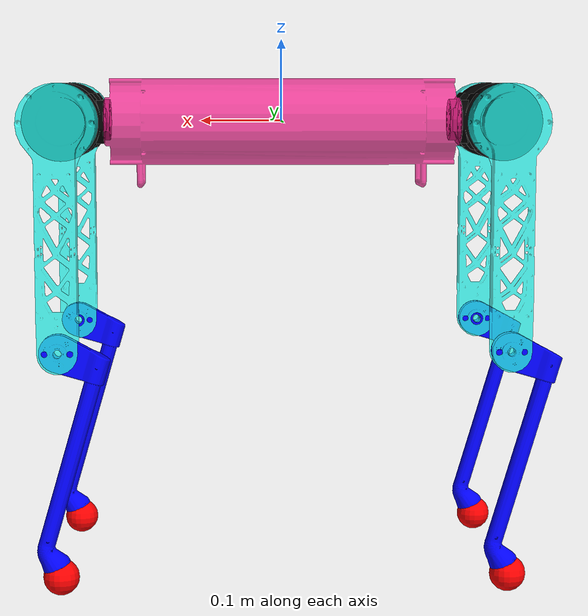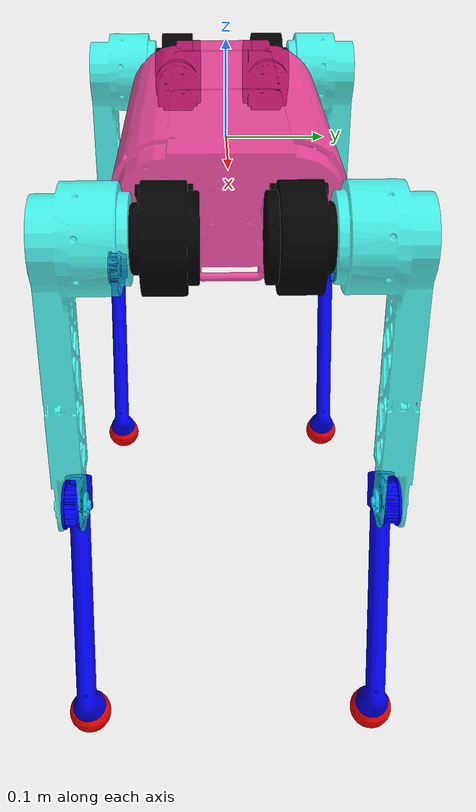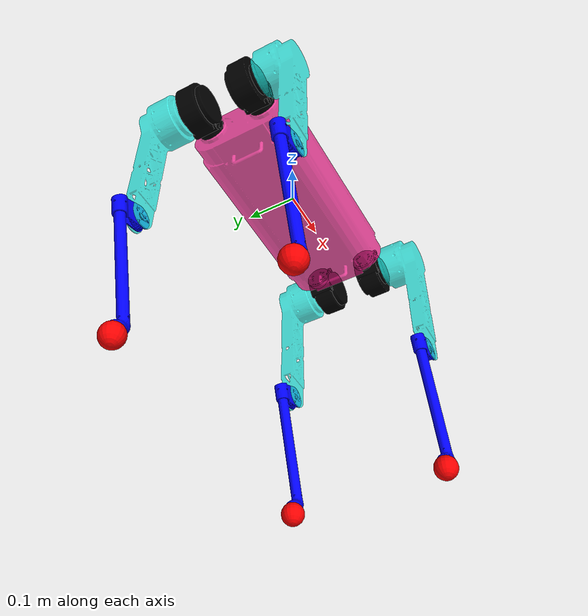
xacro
<?xml version="1.0"?>

<robot name="siriusmid" xmlns:xacro="http://ros.org/wiki/xacro">
	<xacro:property name="with_arm" default="false"/>
	<xacro:arg name="task_period" default="0.004"/>
	<xacro:arg name="new_gazebo_version" default="false"/>

	<!-- This argument allows us to load joint sensors that measure the internal wrenches -->
	<xacro:arg name="load_force_sensors" default="false"/>

	<!-- The following included files set up definitions of parts of the robot body -->
	<xacro:include filename="$(find siriusmid_description)/urdfs/common.xacro"/>

	<!-- Sirius-mid Body -->
	<xacro:include filename="$(find siriusmid_description)/urdfs/body/body.urdf.xacro"/>

	<!-- Sirius-mid legs -->
	<xacro:include filename="$(find siriusmid_description)/urdfs/leg/leg.urdf.xacro"/>
	<!-- Sirius-arm arm -->
	<xacro:include filename="$(find siriusmid_description)/urdfs/arm/arm.urdf.xacro"/>

	<!-- generic simulator_gazebo plugins for starting mechanism control, ros time -->
        <xacro:include filename="$(find siriusmid_description)/gazebo/gazebo.urdf.xacro">
             <xacro:arg name="task_period" value="$(arg task_period)"/>
        </xacro:include>

	<!-- Now we can start using the macros included above to define the actual Siriusmid -->

	<!--sirius body -->
        <xacro:sirius_body new_gazebo_version="$(arg new_gazebo_version)" />
	<!-- LF leg -->
	<xacro:siriusmid_leg
		name="lf"
		parent="body_link"
		abad_o_x="${lf_abad_joint_origin_x}"
		abad_o_y="${lf_abad_joint_origin_y}"
		abad_o_z="${lf_abad_joint_origin_z}"
		abad_rpy_r="${lf_abad_joint_rpy_r}"
		abad_rpy_p="${lf_abad_joint_rpy_p}"
		abad_rpy_y="${lf_abad_joint_rpy_y}"
		hip_rpy_r="${lf_hip_joint_rpy_r}"
		hip_rpy_p="${lf_hip_joint_rpy_p}"
		hip_rpy_y="${lf_hip_joint_rpy_y}"
		load_force_sensors="$(arg load_force_sensors)">
	</xacro:siriusmid_leg>

	<!-- RF leg -->
	<xacro:siriusmid_leg
		name="rf"
		parent="body_link"
		abad_o_x="${rf_abad_joint_origin_x}"
		abad_o_y="${rf_abad_joint_origin_y}"
		abad_o_z="${rf_abad_joint_origin_z}"
		abad_rpy_r="${rf_abad_joint_rpy_r}"
		abad_rpy_p="${rf_abad_joint_rpy_p}"
		abad_rpy_y="${rf_abad_joint_rpy_y}"
		hip_rpy_r="${rf_hip_joint_rpy_r}"
		hip_rpy_p="${rf_hip_joint_rpy_p}"
		hip_rpy_y="${rf_hip_joint_rpy_y}"
		load_force_sensors="$(arg load_force_sensors)">
	</xacro:siriusmid_leg>

	<!-- LR leg -->
	<xacro:siriusmid_leg
		name="lr"
		parent="body_link"
		abad_o_x="${lr_abad_joint_origin_x}"
		abad_o_y="${lr_abad_joint_origin_y}"
		abad_o_z="${lr_abad_joint_origin_z}"
		abad_rpy_r="${lr_abad_joint_rpy_r}"
		abad_rpy_p="${lr_abad_joint_rpy_p}"
		abad_rpy_y="${lr_abad_joint_rpy_y}"
		hip_rpy_r="${lr_hip_joint_rpy_r}"
		hip_rpy_p="${lr_hip_joint_rpy_p}"
		hip_rpy_y="${lr_hip_joint_rpy_y}"
		load_force_sensors="$(arg load_force_sensors)">
	</xacro:siriusmid_leg>

	<!-- RR leg -->
	<xacro:siriusmid_leg
		name="rr"
		parent="body_link"
		abad_o_x="${rr_abad_joint_origin_x}"
		abad_o_y="${rr_abad_joint_origin_y}"
		abad_o_z="${rr_abad_joint_origin_z}"
		abad_rpy_r="${rr_abad_joint_rpy_r}"
		abad_rpy_p="${rr_abad_joint_rpy_p}"
		abad_rpy_y="${rr_abad_joint_rpy_y}"
		hip_rpy_r="${rr_hip_joint_rpy_r}"
		hip_rpy_p="${rr_hip_joint_rpy_p}"
		hip_rpy_y="${rr_hip_joint_rpy_y}"
		load_force_sensors="$(arg load_force_sensors)">
	</xacro:siriusmid_leg>

	<!--Arm-->
	<xacro:if value="${with_arm}">
		<!--		link1-->
		<xacro:sirius_arm
				num_name="1"
				parent="body_link"
				inertial_xyz="${inertial_xyz_1}"
				inertial_rpy="${inertial_rpy_1}"
				joint_xyz="${joint_xyz_1}"
				joint_rpy="${joint_rpy_1}"
				mass="${mass_1}"
				joint_axis="${joint_axis_1}"
				ixx="${ixx_1}"
				iyy="${iyy_1}"
				izz="${izz_1}"
				ixy="${ixy_1}"
				ixz="${ixz_1}"
				iyz="${iyz_1}"
				effort="${effort_1}"
				color_name="${joint1_col}"
				low_lit="${joint1_low}"
				up_lit="${joint1_up}"
				load_force_sensors="$(arg load_force_sensors)">
		</xacro:sirius_arm>
				<!--		link2-->
		<xacro:sirius_arm
				num_name="2"
				parent="sirius_arm_link_1"
				inertial_xyz="${inertial_xyz_2}"
				inertial_rpy="${inertial_rpy_2}"
				joint_xyz="${joint_xyz_2}"
				joint_rpy="${joint_rpy_2}"
				mass="${mass_2}"
				joint_axis="${joint_axis_2}"
				ixx="${ixx_2}"
				iyy="${iyy_2}"
				izz="${izz_2}"
				ixy="${ixy_2}"
				ixz="${ixz_2}"
				iyz="${iyz_2}"
				effort="${effort_2}"
				color_name="${joint2_col}"
				low_lit="${joint2_low}"
				up_lit="${joint2_up}"
				load_force_sensors="$(arg load_force_sensors)">
		</xacro:sirius_arm>
				<!--		link1-->
		<xacro:sirius_arm
				num_name="3"
				parent="sirius_arm_link_2"
				inertial_xyz="${inertial_xyz_3}"
				inertial_rpy="${inertial_rpy_3}"
				joint_xyz="${joint_xyz_3}"
				joint_rpy="${joint_rpy_3}"
				mass="${mass_3}"
				joint_axis="${joint_axis_3}"
				ixx="${ixx_3}"
				iyy="${iyy_3}"
				izz="${izz_3}"
				ixy="${ixy_3}"
				ixz="${ixz_3}"
				iyz="${iyz_3}"
				effort="${effort_3}"
				color_name="${joint3_col}"
				low_lit="${joint3_low}"
				up_lit="${joint3_up}"
				load_force_sensors="$(arg load_force_sensors)">
		</xacro:sirius_arm>
				<!--		link4-->
		<xacro:sirius_arm
				num_name="4"
				parent="sirius_arm_link_3"
				inertial_xyz="${inertial_xyz_4}"
				inertial_rpy="${inertial_rpy_4}"
				joint_xyz="${joint_xyz_4}"
				joint_rpy="${joint_rpy_4}"
				mass="${mass_4}"
				joint_axis="${joint_axis_4}"
				ixx="${ixx_4}"
				iyy="${iyy_4}"
				izz="${izz_4}"
				ixy="${ixy_4}"
				ixz="${ixz_4}"
				iyz="${iyz_4}"
				effort="${effort_4}"
				color_name="${joint4_col}"
				low_lit="${joint4_low}"
				up_lit="${joint4_up}"
				load_force_sensors="$(arg load_force_sensors)">
		</xacro:sirius_arm>
				<!--		link5-->
		<xacro:sirius_arm
				num_name="5"
				parent="sirius_arm_link_4"
				inertial_xyz="${inertial_xyz_5}"
				inertial_rpy="${inertial_rpy_5}"
				joint_xyz="${joint_xyz_5}"
				joint_rpy="${joint_rpy_5}"
				mass="${mass_5}"
				joint_axis="${joint_axis_5}"
				ixx="${ixx_5}"
				iyy="${iyy_5}"
				izz="${izz_5}"
				ixy="${ixy_5}"
				ixz="${ixz_5}"
				iyz="${iyz_5}"
				effort="${effort_5}"
				color_name="${joint5_col}"
				low_lit="${joint5_low}"
				up_lit="${joint5_up}"
				load_force_sensors="$(arg load_force_sensors)">
		</xacro:sirius_arm>
				<!--		link6-->
		<xacro:sirius_arm
				num_name="6"
				parent="sirius_arm_link_5"
				inertial_xyz="${inertial_xyz_6}"
				inertial_rpy="${inertial_rpy_6}"
				joint_xyz="${joint_xyz_6}"
				joint_rpy="${joint_rpy_6}"
				mass="${mass_6}"
				joint_axis="${joint_axis_6}"
				ixx="${ixx_6}"
				iyy="${iyy_6}"
				izz="${izz_6}"
				ixy="${ixy_6}"
				ixz="${ixz_6}"
				iyz="${iyz_6}"
				effort="${effort_6}"
				color_name="${joint6_col}"
				low_lit="${joint6_low}"
				up_lit="${joint6_up}"
				load_force_sensors="$(arg load_force_sensors)">
		</xacro:sirius_arm>
	</xacro:if>
</robot>

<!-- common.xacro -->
<robot xmlns:xacro="http://ros.org/wiki/xacro">
    <!-- PROPERTY LIST -->
    <!--All units in m-kg-s-radians unit system -->
    <xacro:property name="PI" value="3.1415926535897931" />

    <!-- Main body length, width, height and mass -->
    <xacro:property name="base_link_mass"        value="5.283" />
    <xacro:property name="base_link_width" value="0.22"/>
    <xacro:property name="base_link_length" value="0.54"/>

    <!-- LF LEG length and Mass -->
    <!-- lf abad link and mass -->
    <xacro:property name="lf_abad_link_length"               value="0.095" />
    <xacro:property name="lf_abad_link_mass"                 value="0.92607" />
    <xacro:property name="lf_abad_joint_origin_x"            value="0.216" />
    <xacro:property name="lf_abad_joint_origin_y"            value="0.055" />
    <xacro:property name="lf_abad_joint_origin_z"            value="0" />
    <xacro:property name="lf_abad_joint_rpy_r"               value="1.5708" />
    <xacro:property name="lf_abad_joint_rpy_p"               value="0" />
    <xacro:property name="lf_abad_joint_rpy_y"               value="1.5708" />

    <!-- lf hip link and mass -->
    <xacro:property name="lf_hip_link_length"               value="0.27" />
    <xacro:property name="lf_hip_link_mass"                 value="1.2204" />
    <xacro:property name="lf_hip_joint_rpy_r"               value="1.5708" />
    <xacro:property name="lf_hip_joint_rpy_p"               value="0" />
    <xacro:property name="lf_hip_joint_rpy_y"               value="-1.5708" />
    <!-- lf knee link and mass -->
    <xacro:property name="lf_knee_link_length"              value="0.27" />
    <xacro:property name="lf_knee_link_mass"                value="0.19509" />

    <!-- LR LEG length and Mass -->
    <!-- lr abad link and mass -->
    <xacro:property name="lr_abad_link_length"               value="0.095" />
    <xacro:property name="lr_abad_link_mass"                 value="0.92607" />
    <xacro:property name="lr_abad_joint_origin_x"            value="-0.216" />
    <xacro:property name="lr_abad_joint_origin_y"            value="0.055" />
    <xacro:property name="lr_abad_joint_origin_z"            value="0" />
    <xacro:property name="lr_abad_joint_rpy_r"               value="-1.5708" />
    <xacro:property name="lr_abad_joint_rpy_p"               value="0" />
    <xacro:property name="lr_abad_joint_rpy_y"               value="1.5708" />

    <!-- lr hip link and mass -->
    <xacro:property name="lr_hip_link_length"               value="0.27" />
    <xacro:property name="lr_hip_link_mass"                 value="1.2204" />
    <xacro:property name="lr_hip_joint_rpy_r"               value="-1.5708" />
    <xacro:property name="lr_hip_joint_rpy_p"               value="0" />
    <xacro:property name="lr_hip_joint_rpy_y"               value="1.5708" />

    <!-- lr knee link and mass -->
    <xacro:property name="lr_knee_link_length"              value="0.27" />
    <xacro:property name="lr_knee_link_mass"                value="0.19509" />
    <!-- RF LEG length and Mass -->
    <!-- rf abad link and mass -->
    <xacro:property name="rf_abad_link_length"               value="0.095" />
    <xacro:property name="rf_abad_link_mass"                 value="0.92607" />
    <xacro:property name="rf_abad_joint_origin_x"            value="0.216" />
    <xacro:property name="rf_abad_joint_origin_y"            value="-0.055" />
    <xacro:property name="rf_abad_joint_origin_z"            value="0" />
    <xacro:property name="rf_abad_joint_rpy_r"               value="-1.5708" />
    <xacro:property name="rf_abad_joint_rpy_p"               value="0" />
    <xacro:property name="rf_abad_joint_rpy_y"               value="-1.5708" />

    <!-- rf hip link and mass -->
    <xacro:property name="rf_hip_link_length"               value="0.27" />
    <xacro:property name="rf_hip_link_mass"                 value="1.2204" />
    <xacro:property name="rf_hip_joint_rpy_r"               value="1.5708" />
    <xacro:property name="rf_hip_joint_rpy_p"               value="0" />
    <xacro:property name="rf_hip_joint_rpy_y"               value="1.5708" />
    <!-- rf knee link and mass -->
    <xacro:property name="rf_knee_link_length"              value="0.27" />
    <xacro:property name="rf_knee_link_mass"                value="0.19509" />
    <!-- RR LEG length and Mass -->
    <!-- rr abad link and mass -->
    <xacro:property name="rr_abad_link_length"              value="0.095" />
    <xacro:property name="rr_abad_link_mass"                value="0.92607" />
    <xacro:property name="rr_abad_joint_origin_x"            value="-0.216" />
    <xacro:property name="rr_abad_joint_origin_y"            value="-0.055" />
    <xacro:property name="rr_abad_joint_origin_z"            value="0" />
    <xacro:property name="rr_abad_joint_rpy_r"               value="1.5708" />
    <xacro:property name="rr_abad_joint_rpy_p"               value="0" />
    <xacro:property name="rr_abad_joint_rpy_y"               value="-1.5708" />

    <!-- rr hip link and mass -->
    <xacro:property name="rr_hip_link_length"               value="0.27" />
    <xacro:property name="rr_hip_link_mass"                 value="1.2204" />
    <xacro:property name="rr_hip_joint_rpy_r"               value="-1.5708" />
    <xacro:property name="rr_hip_joint_rpy_p"               value="0" />
    <xacro:property name="rr_hip_joint_rpy_y"               value="-1.5708" />

    <!-- rr knee link and mass -->
    <xacro:property name="rr_knee_link_length"              value="0.27" />
    <xacro:property name="rr_knee_link_mass"                value="0.19509" />

    <!-- arm link 1 position-->

    <xacro:property name="inertial_xyz_1" value="-4.54332707405351E-05 0.0330281553136483 1.94028629631332E-05"/>
    <xacro:property name="inertial_rpy_1" value="0 0 0"/>
    <xacro:property name="joint_xyz_1" value="0.18 0 0.09"/>
    <xacro:property name="joint_rpy_1" value="1.5708 0 0"/>
    <xacro:property name="mass_1" value="0.235406473601654"/>
    <xacro:property name="joint_axis_1" value="0 -1 0"/>
    <xacro:property name="ixx_1" value="0.000160607012565252"/>
    <xacro:property name="iyy_1" value="0.000211026969733757"/>
    <xacro:property name="izz_1" value="0.00024235784367254"/>
    <xacro:property name="ixy_1" value="2.19448094706555E-07"/>
    <xacro:property name="ixz_1" value="-1.11059955432991E-07"/>
    <xacro:property name="iyz_1" value="1.28505266234176E-09"/>
    <xacro:property name="effort_1" value="15"/>
        <!-- arm link 2 position-->

    <xacro:property name="inertial_xyz_2" value="-0.123983448034847 -0.000167759427026362 -0.0161075281625212"/>
    <xacro:property name="inertial_rpy_2" value="0 0 0"/>
    <xacro:property name="joint_xyz_2" value="0 0.0598 0.0161"/>
    <xacro:property name="joint_rpy_2" value="0 0 0"/>
    <xacro:property name="mass_2" value="0.2050657060621"/>
    <xacro:property name="joint_axis_2" value="0 0 1"/>
    <xacro:property name="ixx_2" value="5.99414289179861E-05"/>
    <xacro:property name="iyy_2" value="0.000518464036627089"/>
    <xacro:property name="izz_2" value="0.000555420060716328"/>
    <xacro:property name="ixy_2" value="-1.30659504989751E-08"/>
    <xacro:property name="ixz_2" value="-2.32968333714228E-07"/>
    <xacro:property name="iyz_2" value="-1.46723013267941E-12"/>
    <xacro:property name="effort_2" value="15"/>
        <!-- arm link 3 position-->

    <xacro:property name="inertial_xyz_3" value="0.0795921032840744 0.0544863432904803 0.0150269748129291"/>
    <xacro:property name="inertial_rpy_3" value="0 0 0"/>
    <xacro:property name="joint_xyz_3" value="-0.2995 5E-05 -0.0311"/>
    <xacro:property name="joint_rpy_3" value="0 0 0"/>
    <xacro:property name="mass_3" value="0.108769772326711"/>
    <xacro:property name="joint_axis_3" value="0 0 -1"/>
    <xacro:property name="ixx_3" value="9.3367242976894E-05"/>
    <xacro:property name="iyy_3" value="0.000600921630137833"/>
    <xacro:property name="izz_3" value="0.000628605946082781"/>
    <xacro:property name="ixy_3" value="8.5827927234517E-06"/>
    <xacro:property name="ixz_3" value="-2.86170084482089E-08"/>
    <xacro:property name="iyz_3" value="3.36973255145296E-08"/>
    <xacro:property name="effort_3" value="15"/>
        <!-- arm link 4 position-->

    <xacro:property name="inertial_xyz_4" value="0.0165266443814739 -0.00174069771255481 1.11979181560279E-05"/>
    <xacro:property name="inertial_rpy_4" value="0 0 0"/>
    <xacro:property name="joint_xyz_4" value="0.271235 0.0635 0.015"/>
    <xacro:property name="joint_rpy_4" value="0 0 0"/>
    <xacro:property name="mass_4" value="0.0444792966223345"/>
    <xacro:property name="joint_axis_4" value="1 0 0"/>
    <xacro:property name="ixx_4" value="2.43072028955947E-05"/>
    <xacro:property name="iyy_4" value="3.17415145224588E-05"/>
    <xacro:property name="izz_4" value="2.76599362226638E-05"/>
    <xacro:property name="ixy_4" value="1.19532694040292E-06"/>
    <xacro:property name="ixz_4" value="2.29104878877617E-11"/>
    <xacro:property name="iyz_4" value="6.14642634616325E-11"/>
    <xacro:property name="effort_4" value="3"/>
        <!-- arm link 5 position-->

    <xacro:property name="inertial_xyz_5" value="0.0176033091473792 -0.0362914142509103 -0.000193904292373495"/>
    <xacro:property name="inertial_rpy_5" value="0 0 0"/>
    <xacro:property name="joint_xyz_5" value="0.0315 0.0349 0"/>
    <xacro:property name="joint_rpy_5" value="0 0 0"/>
    <xacro:property name="mass_5" value="0.060436314636669"/>
    <xacro:property name="joint_axis_5" value="0 -1 0"/>
    <xacro:property name="ixx_5" value="4.02686986024085E-05"/>
    <xacro:property name="iyy_5" value="2.67276541678908E-05"/>
    <xacro:property name="izz_5" value="4.15933303332631E-05"/>
    <xacro:property name="ixy_5" value="-3.66834880836016E-06"/>
    <xacro:property name="ixz_5" value="-5.01729129104047E-09"/>
    <xacro:property name="iyz_5" value="2.5992331923845E-08"/>
    <xacro:property name="effort_5" value="3"/>
        <!-- arm link 6 position-->

    <xacro:property name="inertial_xyz_6" value="0.0088328 -4.7916E-07 -4.2793E-05"/>
    <xacro:property name="inertial_rpy_6" value="0 0 0"/>
    <xacro:property name="joint_xyz_6" value="0.04775 -0.03445 0"/>
    <xacro:property name="joint_rpy_6" value="0 0 0"/>
    <xacro:property name="mass_6" value="0.043795"/>
    <xacro:property name="joint_axis_6" value="1 0 0"/>
    <xacro:property name="ixx_6" value="1.3843E-05"/>
    <xacro:property name="iyy_6" value="9.2024E-06"/>
    <xacro:property name="izz_6" value="9.2215E-06"/>
    <xacro:property name="ixy_6" value="-2.1512E-10"/>
    <xacro:property name="ixz_6" value="-2.2404E-08"/>
    <xacro:property name="iyz_6" value="-2.8088E-10"/>
    <xacro:property name="effort_6" value="3"/>
<!--    Arm color-->
    <xacro:property name="joint1_col" value="Black"/>
    <xacro:property name="joint2_col" value="White"/>
    <xacro:property name="joint3_col" value="White"/>
    <xacro:property name="joint4_col" value="Black"/>
    <xacro:property name="joint5_col" value="Black"/>
    <xacro:property name="joint6_col" value="Red"/>
<!--    arm joint limit joint1_low joint1_up -->
    <xacro:property name="joint1_low" value="-3.14"/>
    <xacro:property name="joint1_up" value="3.14"/>
    <xacro:property name="joint2_low" value="-3.14"/>
    <xacro:property name="joint2_up" value="0.14"/>
    <xacro:property name="joint3_low" value="-3.14"/>
    <xacro:property name="joint3_up" value="0."/>
    <xacro:property name="joint4_low" value="-3.14"/>
    <xacro:property name="joint4_up" value="3.14"/>
    <xacro:property name="joint5_low" value="-3.14"/>
    <xacro:property name="joint5_up" value="3.14"/>
    <xacro:property name="joint6_low" value="-3.14"/>
    <xacro:property name="joint6_up" value="3.14"/>
</robot>

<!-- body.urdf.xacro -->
<robot xmlns:xacro="http://ros.org/wiki/xacro">

	<!-- Things that are needed only for Gazebo (not the physical robot). These include sensor and controller plugin specifications -->
	<xacro:include filename="$(find siriusmid_description)/urdfs/body/body.gazebo.xacro"/>

	<!-- ================================ Body ================================ -->
	<!-- The xacro macro xacro:sirius_base contains: base and body -->
        <xacro:macro name="sirius_body" params="new_gazebo_version">
                <!-- BASE LINK -->
                <!-- floating type is supported in older versions of Gazebo. In new Gazebo if a link has no parent, it is supposed to be attached to a floating joint -->

                <xacro:unless value="$(arg new_gazebo_version)">
                    <!-- Floating-base Joint -->
                    <link name="world"/>

                    <joint name="floating_base_joint" type="floating" >
                        <origin rpy="0 0 0" xyz="0 0 0"/>
                        <parent link="world"/>
                        <child link="base_link"/>
                    </joint>
                </xacro:unless>

                <joint name="floating_base" type="fixed">
                    <origin rpy="0 0 0" xyz="0 0 0"/>
                    <parent link="base_link"/>
                    <child link="body_link"/>
                </joint>

        <link name="base_link"/>
		<!-- body link -->
        <link name="body_link">
            <inertial>
                <origin
                    xyz="4.0393E-05 -2.1734E-06 -0.00063565"
                    rpy="0 0 0" />
                <mass
                    value="5.283" />
                <inertia
                    ixx="0.028454"
                    ixy="-5.9775E-08"
                    ixz="-0.00050774"
                    iyy="0.15791"
                    iyz="-1.7886E-08"
                    izz="0.17219" />
            </inertial>
            <visual>
                <origin xyz=" 0 0 0" rpy="1.5704 0 0" />
                <geometry>
                    <mesh
                    filename="package://siriusmid_description/meshes/body_link.STL" />
                </geometry>
                <material name="Pink" />
            </visual>
            <collision>
                <origin xyz="0 0 0" rpy="0 0 0" />
                <geometry>
                    <mesh
                    filename="package://siriusmid_description/meshes/body_link.STL" />
                </geometry>
            </collision>
        </link>

		<!-- Extensions -->
		<xacro:body_gazebo name="body_link"/>
	</xacro:macro>

</robot>

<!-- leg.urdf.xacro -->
<robot xmlns:xacro="http://ros.org/wiki/xacro">
    <!-- Defining the colors used in this robot -->
    <material name="Black">
        <color rgba="0 0 0 1"/>
    </material>
    <material name="Yellow">
        <color rgba="0.854 0.976 0.14 0.8"/>
    </material>
    <material name="White">
        <color rgba="1 1 1 1"/>
    </material>
    <material name="Pink">
        <color rgba="0.96 0.15 0.568 0.8"/>
    </material>
    <material name="Blue">
        <color rgba="0 0 1 1"/>
    </material>

    <material name="Red">
        <color rgba="1 0 0 1"/>
    </material>
    <material name="GreenSky">
        <color rgba="0.149 0.976 0.941 0.8"/>
    </material>

	<!-- Things that are needed only for Gazebo (not the physical robot). These include sensor and controller plugin specifications -->
	<xacro:include filename="$(find siriusmid_description)/urdfs/leg/leg.transmission.xacro"/>
	<xacro:include filename="$(find siriusmid_description)/urdfs/leg/leg.gazebo.xacro"/>

	<!-- ================================== Leg ================================== -->
	<!-- The xacro macro xacro:siriusmid_leg contains: abad assembly, upper and lower leg -->
	<xacro:macro name="siriusmid_leg" params="name parent abad_o_x abad_o_y abad_o_z abad_rpy_r abad_rpy_p abad_rpy_y hip_rpy_r hip_rpy_p hip_rpy_y load_force_sensors">
		<!-- Joints -->
		<!-- abad assembly joint -->
        <joint name="${name}_abad_joint" type="revolute">
            <parent link="${parent}"/>
            <child link="${name}_abad_link"/>
            <origin xyz="${abad_o_x} ${abad_o_y} ${abad_o_z}" rpy="${abad_rpy_r} ${abad_rpy_p} ${abad_rpy_y}" />
            <axis xyz="0 0 -1"/>
            <limit
                lower="-2.88"
                upper="2.88"
                effort="25"
                velocity="15" />
            <!-- soft limits  keep the motor in safety mode-->
            <safety_controller k_position="500" k_velocity="5" soft_lower_limit="-2.78" soft_upper_limit="2.78"/>
        </joint>
		<!-- Upper leg joint -->
        <joint name="${name}_hip_joint" type="revolute">
            <parent link="${name}_abad_link"/>
            <child link="${name}_hip_link"/>
            <origin xyz="0.09355 0 0.052" rpy="${hip_rpy_r} ${hip_rpy_p} ${hip_rpy_y}" />
            <axis xyz="0 0 1"/>
            <limit
                lower="-2.88"
                upper="2.88"
                effort="25"
                velocity="15" />
            <!-- soft limits  keep the motor in safety mode-->
            <safety_controller k_position="500" k_velocity="5" soft_lower_limit="-2.78" soft_upper_limit="2.78"/>
        </joint>
		<!-- Lower leg joint -->
        <joint name="${name}_knee_joint" type="revolute">
            <parent link="${name}_hip_link"/>
            <child link="${name}_knee_link"/>
            <origin xyz="0.269 0 0" rpy="0 0 0" />
            <axis xyz="0 0 -1"/>
            <limit
                lower="-2.88"
                upper="2.88"
                effort="25"
                velocity="15" />
            <!-- soft limits  keep the motor in safety mode-->
            <safety_controller k_position="500" k_velocity="5" soft_lower_limit="-2.78" soft_upper_limit="2.78"/>
        </joint>
		<!-- foot joint-->
		<joint name="${name}_foot_joint" type="fixed">
			<origin xyz="0.271 0 0" rpy="${PI/2} 0 ${-PI/2}"/>
			<parent link="${name}_knee_link"/>
			<child  link="${name}_foot"/>
		</joint>

		<!-- Links -->
		<!-- abad link -->
        <link name="${name}_abad_link">
            <inertial>
                <origin
                    xyz="-0.0012806 4.3563E-08 0.049958"
                    rpy="0 0 0" />
                <mass
                    value="0.92607" />
                <inertia
                    ixx="0.00098647"
                    ixy="-7.0392E-11"
                    ixz="6.4987E-06"
                    iyy="0.00071554"
                    iyz="1.2357E-10"
                    izz="0.00065157" />
            </inertial>
            <visual>
                <origin xyz="0 0 0" rpy="0 0  0 " />
                <geometry>
                    <mesh
                        filename="package://siriusmid_description/meshes/${name}_abad_link.STL" />
                </geometry>
                <material name="Black" />
            </visual>
            <collision>
                <origin xyz="0 0 0" rpy="0 0 0 " />
                <geometry>
                    <mesh
                        filename="package://siriusmid_description/meshes/${name}_abad_link.STL" />
                </geometry>
            </collision>
		</link>
		<!-- name: lf,lr,rf,rr -->
        <link name="${name}_hip_link">
            <inertial>
                <origin
                    xyz="0.027042 -1.7816E-10 0.028552"
                    rpy="0 0 0" />
                <mass
                    value="1.22" />
                <inertia
                    ixx="0.001198"
                    ixy="4.6672E-11"
                    ixz="0.00095291"
                    iyy="0.0068604"
                    iyz="2.0712E-12"
                    izz="0.0068553" />
            </inertial>
            <visual>
                <origin xyz="0 0 0" rpy="0 0  0 " />
                <geometry>
                    <mesh
                        filename="package://siriusmid_description/meshes/${name}_hip_link.STL" />
                </geometry>
                <material name="GreenSky" />
            </visual>
            <collision>
                <origin xyz="0 0 0" rpy="0 0 0 " />
                <geometry>
                    <mesh
                        filename="package://siriusmid_description/meshes/${name}_hip_link.STL" />
                </geometry>
            </collision>

        </link>
		<!-- Lower leg link -->
    	<!-- name: lf,lr,rf,rr -->
        <link name="${name}_knee_link">
            <inertial>
                <origin
                    xyz="0.11612 -0.0066095 -4.5982E-08"
                    rpy="0 0 0" />
                <mass
                    value="0.19509" />
                <inertia
                    ixx="0.00010142"
                    ixy="-0.00027114"
                    ixz="2.9242E-09"
                    iyy="0.0024964"
                    iyz="2.6632E-09"
                    izz="0.0025805"/>
            </inertial>
            <visual>
                <origin xyz="0 0 0" rpy="0 0  0 " />
                <geometry>
                    <mesh
                        filename="package://siriusmid_description/meshes/${name}_knee_link.STL" />
                </geometry>
                <material name="Blue" />
            </visual>
            <collision>
                <origin xyz="0 0 0" rpy="0 0 0 " />
                <geometry>
                    <mesh
                        filename="package://siriusmid_description/meshes/${name}_knee_link.STL" />
                </geometry>
            </collision>

        </link>
				<!-- Links -->
		<!-- Foot link -->
		<link name="${name}_foot">
			<collision>
				<origin xyz="0 0 0" rpy="0 0 0"/>
				<geometry>
					<sphere radius="0.02175"/>
				</geometry>
			</collision>
			<visual>
				<geometry>
					<sphere radius="0.02175" />
				</geometry>
				<material name="Red" />
			</visual>
		</link>

		<!-- Extensions -->
		<xacro:leg_transmission name="${name}"/>
		<xacro:leg_gazebo name="${name}" load_force_sensors="${load_force_sensors}"/>
	</xacro:macro>

</robot>
